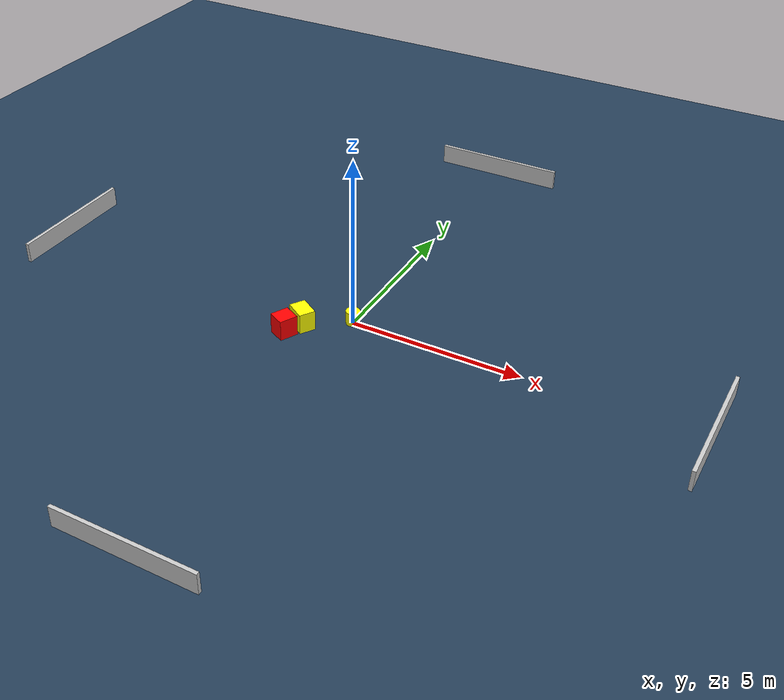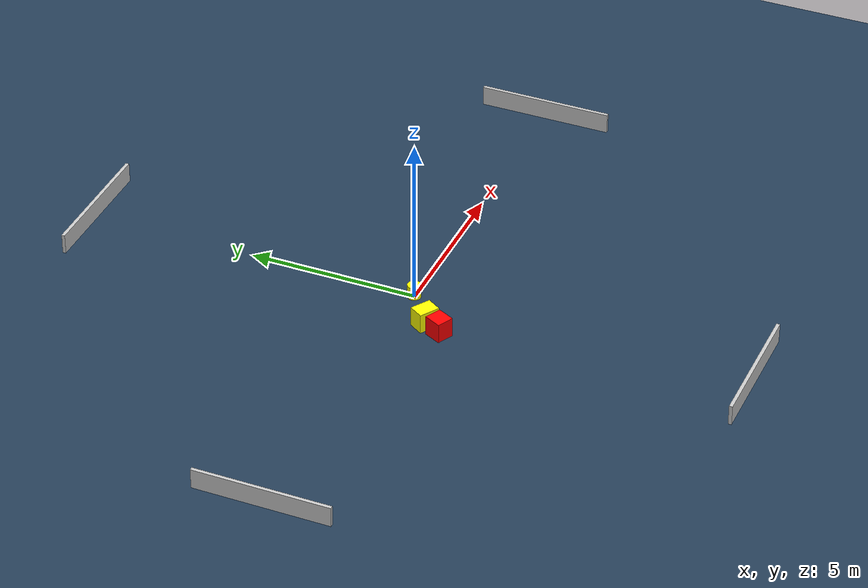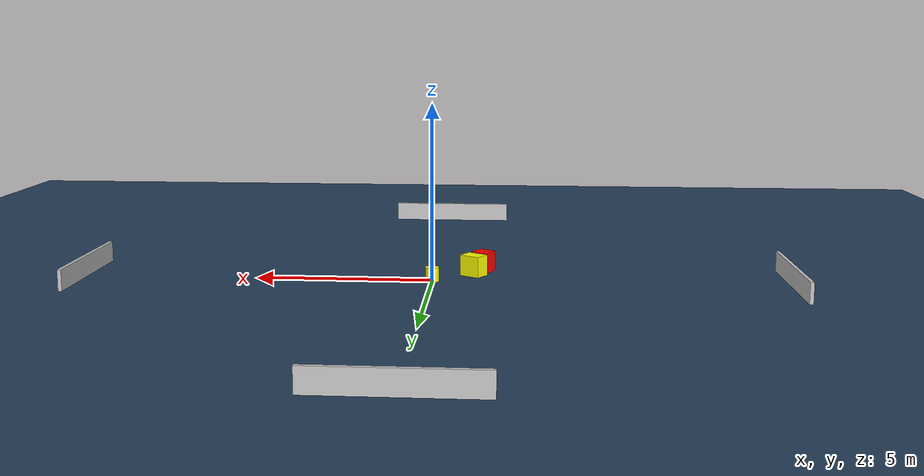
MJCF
<?xml version="1.0" ?>
<mujoco model="generated_environment">
  <option timestep="0.01" integrator="RK4" cone="elliptic"/>
  <default>
    <geom density="1"/>
  </default>
  <asset>
    <texture builtin="gradient" height="3072" name="skybox" rgb1="0.3 0.5 0.7" rgb2="0 0 0" type="skybox" width="512"/>
    <texture builtin="checker" height="300" name="groundplane" rgb1="0.2 0.3 0.4" rgb2="0.1 0.2 0.3" type="2d" width="300"/>
    <material name="groundplane" reflectance="0.2" texrepeat="5 5" texture="groundplane"/>
  </asset>
  <worldbody>
    <light dir="0 0 -1" directional="true" pos="0 0 1.5"/>
    <geom condim="3" friction="0.5 0.005 0.001" material="groundplane" name="floor" pos="0 0 0" size="0 0 0.05" type="plane"/>
    <body name="walls">
      <geom name="wall_1" condim="4" pos="-10.0 0.0 0.3" rgba="0.800000011920929 0.800000011920929 0.800000011920929 1.0" size="0.05 2.0 0.3" type="box"/>
      <geom name="wall_2" condim="4" pos="10.0 0.0 0.3" rgba="0.800000011920929 0.800000011920929 0.800000011920929 1.0" size="0.05 2.0 0.3" type="box"/>
      <geom name="wall_3" condim="4" pos="0.0 -10.0 0.3" rgba="0.800000011920929 0.800000011920929 0.800000011920929 1.0" size="2.0 0.05 0.3" type="box"/>
      <geom name="wall_4" condim="4" pos="0.0 10.0 0.3" rgba="0.800000011920929 0.800000011920929 0.800000011920929 1.0" size="2.0 0.05 0.3" type="box"/>
    </body>
    <body name="robot">
      <joint name="joint_x" type="slide" pos="0 0 0" axis="1 0 0"/>
      <joint name="joint_y" type="slide" pos="0 0 0" axis="0 1 0"/>
      <geom name="robot" type="cylinder" pos="0.0 0.0 0.2" size="0.2 0.2 0.0" mass="5.0" friction="1.0 0.005 0.0001" condim="4" rgba="1.0 1.0 0.0 1.0"/>
    </body>
    <body name="obstacle_1_movable">
      <geom name="obstacle_1_movable" condim="4" pos="-1.1385779995426746 -0.8095194546054416 0.3" euler="0 0 327.7900285721164" friction="0.0 0.005 0.001" rgba="1.0 1.0 0.0 1.0" size="0.31199765728950474 0.234053927786886 0.3" type="box" mass="0.1"/>
      <joint type="free"/>
    </body>
    <body name="obstacle_2_static">
      <geom name="obstacle_2_static" condim="4" pos="-1.3951727879347906 -1.341176079604132 0.3" euler="0 0 333.5873209117319" friction="0.0 0.005 0.001" rgba="1.0 0.0 0.0 1.0" size="0.25278473664421186 0.2679652253733782 0.3" type="box"/>
    </body>
  </worldbody>
  <actuator>
    <motor name="actuator_x" joint="joint_x" gear="1" ctrlrange="-1 1"/>
    <motor name="actuator_y" joint="joint_y" gear="1" ctrlrange="-1 1"/>
  </actuator>
</mujoco>
